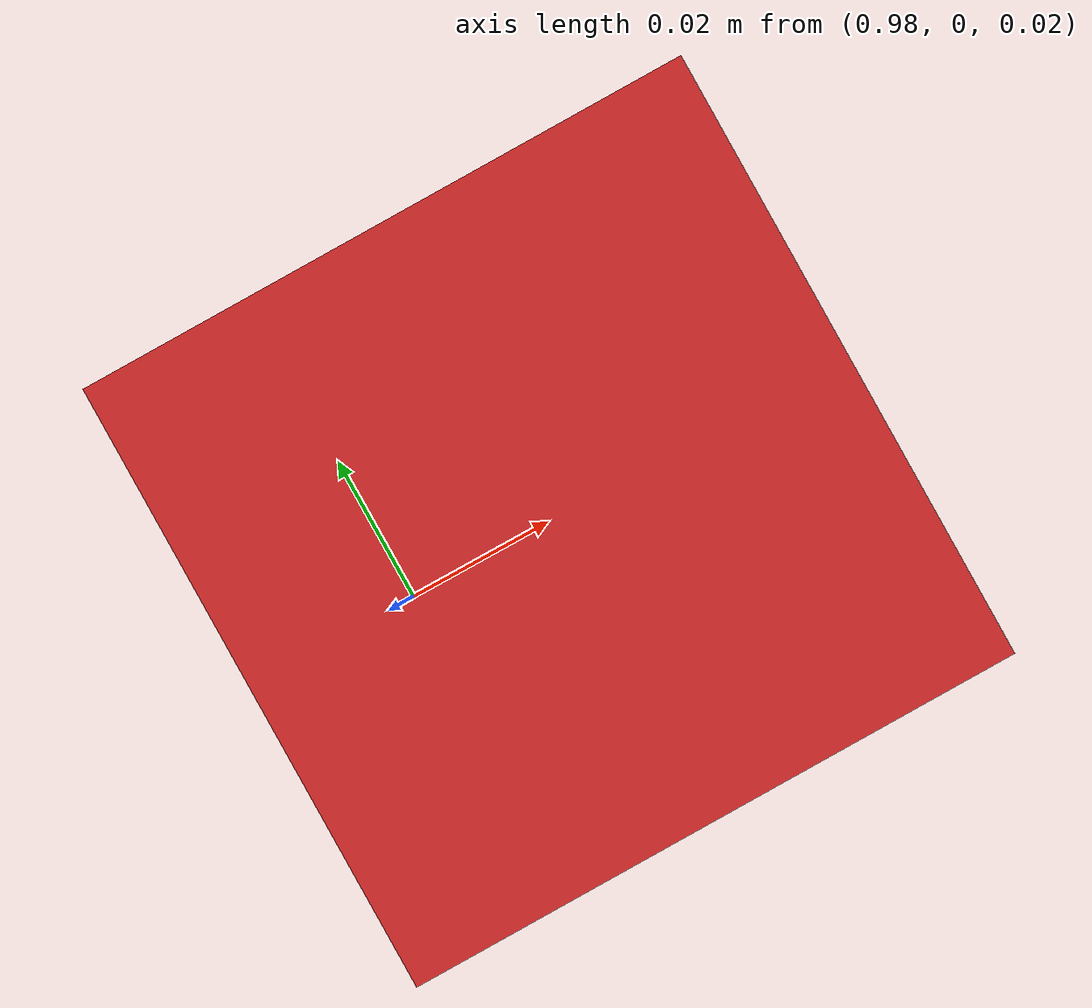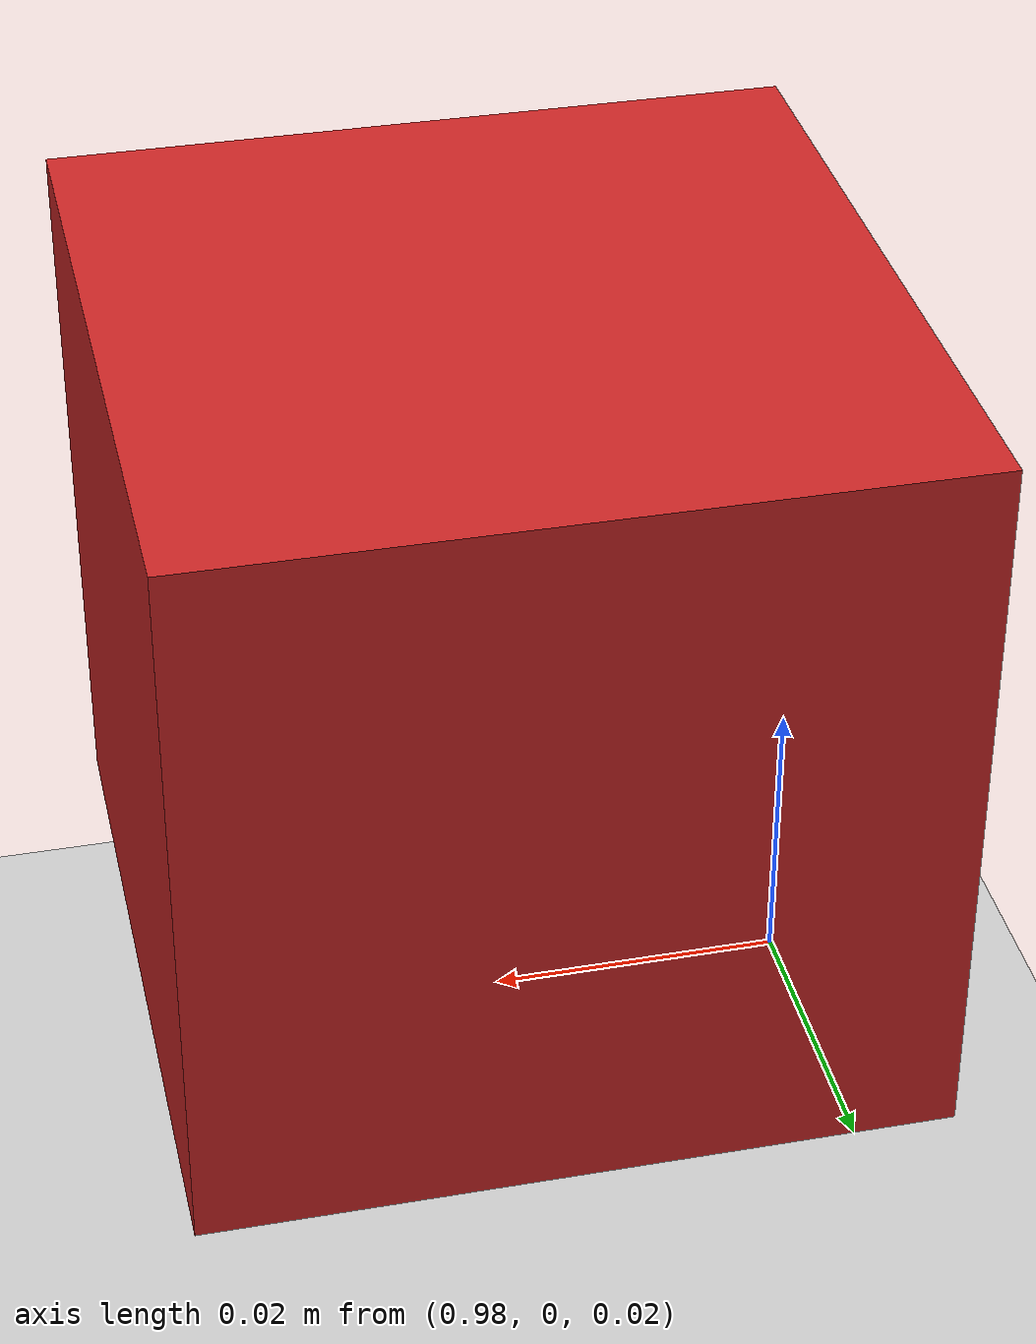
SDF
<?xml version="1.0" ?>
<sdf version="1.7">
  <world name="empty_world">
    <!-- Ground plane -->
    <model name="ground_plane">
      <static>true</static>
      <link name="link">
        <collision name="collision">
          <geometry>
            <plane>
              <normal>0 0 1</normal>
              <size>100 100</size>
            </plane>
          </geometry>
          <surface>
            <friction>
              <ode>
                <mu>0.6</mu>
                <mu2>0.6</mu2>
              </ode>
            </friction>
          </surface>
        </collision>
        <visual name="visual">
          <geometry>
            <plane>
              <normal>0 0 1</normal>
              <size>100 100</size>
            </plane>
          </geometry>
          <material>
            <script>
              <uri>file://media/materials/scripts/gazebo.material</uri>
              <name>Gazebo/Grey</name>
            </script>
          </material>
        </visual>
      </link>
    </model>

    <!-- Object for pick-and-place -->
    <model name="cube">
      <pose>1.0 0 0.05 0 0 0</pose>
      <link name="link">
        <collision name="collision">
          <geometry>
            <box>
              <size>0.05 0.05 0.05</size>
            </box>
          </geometry>
          <surface>
            <friction>
              <ode>
                <mu>0.8</mu>
                <mu2>0.8</mu2>
              </ode>
            </friction>
          </surface>
        </collision>
        <visual name="visual">
          <geometry>
            <box>
              <size>0.05 0.05 0.05</size>
            </box>
          </geometry>
          <material>
            <script>
              <uri>file://media/materials/scripts/gazebo.material</uri>
              <name>Gazebo/Red</name>
            </script>
          </material>
        </visual>
        <inertial>
          <mass>0.1</mass>
          <inertia>
            <ixx>0.0001</ixx>
            <ixy>0</ixy>
            <ixz>0</ixz>
            <iyy>0.0001</iyy>
            <iyz>0</iyz>
            <izz>0.0001</izz>
          </inertia>
        </inertial>
      </link>
    </model>

    <!-- Light source -->
    <light type="point" name="sun">
      <pose>0 0 10 0 0 0</pose>
      <diffuse>0.8 0.8 0.8 1</diffuse>
      <specular>0.2 0.2 0.2 1</specular>
      <attenuation>
        <range>20</range>
        <constant>0.9</constant>
        <linear>0.01</linear>
        <quadratic>0.001</quadratic>
      </attenuation>
    </light>

    <!-- Physics settings -->
    <physics type="ode">
      <max_step_size>0.001</max_step_size>
      <real_time_factor>1</real_time_factor>
      <real_time_update_rate>1000</real_time_update_rate>
    </physics>
  </world>
</sdf>
